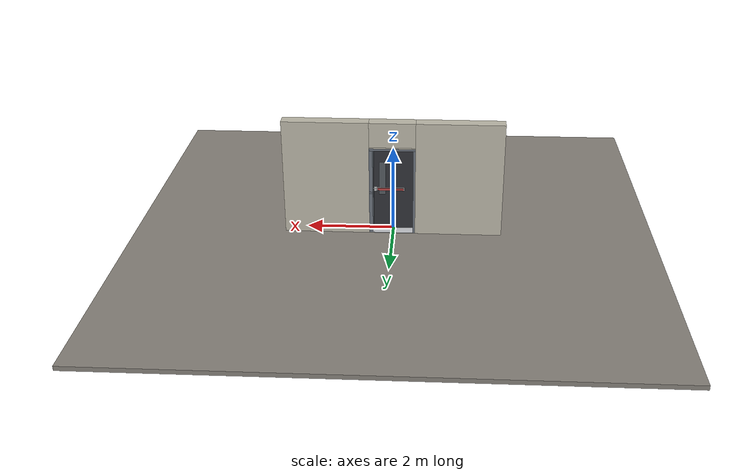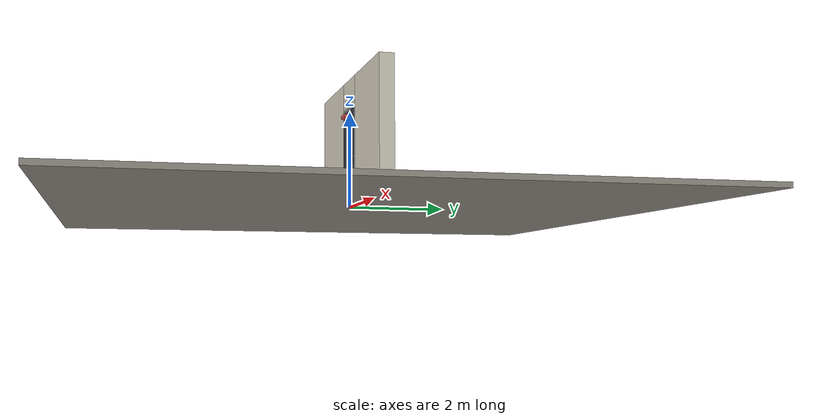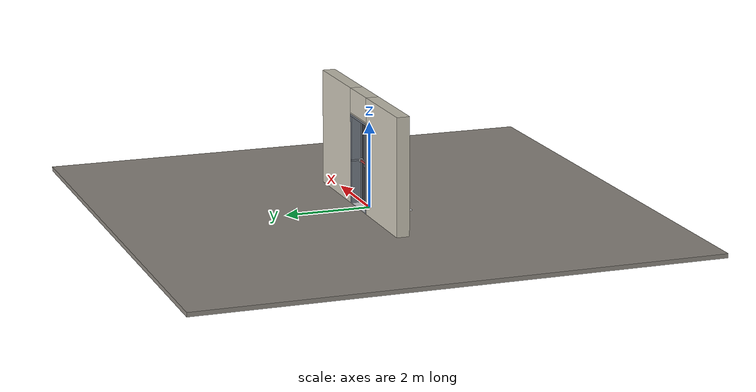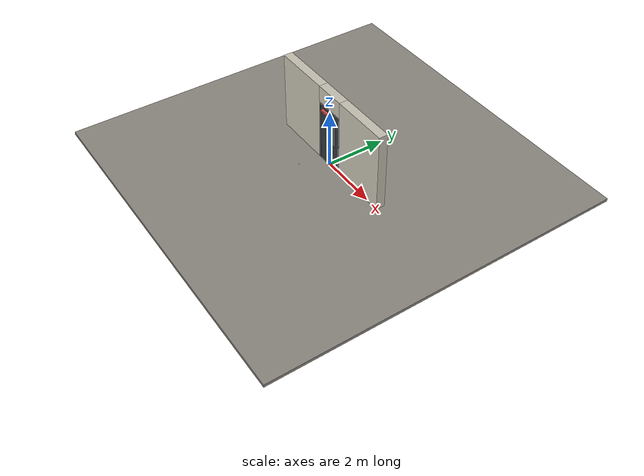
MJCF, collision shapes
<?xml version="1.0" ?>
<mujoco model="db0220_swing_single_simple">
  <compiler angle="radian" meshdir="../../hardware" texturedir="../../textures" autolimits="true" inertiafromgeom="false"/>
  <option timestep="0.002" integrator="implicitfast" cone="elliptic" impratio="10" noslip_iterations="3">
    <flag multiccd="enable"/>
  </option>
  <size memory="16M"/>
  <default>
    <geom condim="4" solref="0.005 1" solimp="0.95 0.99 0.001"/>
    <joint solreflimit="0.005 1" solimplimit="0.95 0.99 0.001"/>
    <tendon solreflimit="0.005 1"/>
    <equality solref="0.002 1"/>
  </default>
  <visual>
    <headlight ambient="0.4 0.4 0.4" diffuse="0.7 0.7 0.7" specular="0.2 0.2 0.2"/>
    <quality shadowsize="4096"/>
    <map znear="0.01" zfar="60"/>
  </visual>
  <asset>
    <mesh name="closer_body_fdc4667657" file="closer_body_fdc4667657.obj"/>
    <mesh name="hinge_ed08f20e7f" file="hinge_ed08f20e7f.obj"/>
    <mesh name="hinge_jamb_1278ce3e25" file="hinge_jamb_1278ce3e25.obj"/>
    <mesh name="touchbar_pad_2729a067b4" file="touchbar_pad_2729a067b4.obj"/>
    <material name="mat_floor" rgba="0.55 0.53 0.5 1" specular="0.2" shininess="0.15" reflectance="0"/>
    <material name="mat_wall" rgba="0.78 0.76 0.7 1" specular="0.2" shininess="0.1" reflectance="0"/>
    <material name="mat_leaf" rgba="0.2 0.21 0.23 1" specular="0.23" shininess="0.54" reflectance="0.02"/>
    <material name="mat_glass" rgba="0.85 0.92 0.95 0.25" specular="0.2" shininess="0.95" reflectance="0.1"/>
    <material name="mat_hinge" rgba="0.65 0.66 0.68 1" specular="0.74" shininess="0.5" reflectance="0.36"/>
    <material name="mat_op_stainless" rgba="0.75 0.76 0.77 1" specular="0.8" shininess="0.65" reflectance="0.4"/>
    <material name="mat_bolt" rgba="0.75 0.76 0.77 1" specular="0.8" shininess="0.65" reflectance="0.4"/>
    <material name="mat_frame" rgba="0.45 0.48 0.52 1" specular="0.32" shininess="0.6" reflectance="0.08"/>
    <material name="mat_seal" rgba="0.1 0.1 0.1 1" specular="0.2" shininess="0.1" reflectance="0"/>
    <material name="mat_threshold" rgba="0.8 0.81 0.83 1" specular="0.8" shininess="0.6" reflectance="0.4"/>
    <material name="mat_closer" rgba="0.22 0.17 0.13 1" specular="0.8" shininess="0.6" reflectance="0.4"/>
    <material name="mat_exit_sign" rgba="0.85 0.1 0.1 1" specular="0.2" shininess="0.6" reflectance="0"/>
    <material name="mat_sign_bracket" rgba="0.8 0.81 0.83 1" specular="0.8" shininess="0.6" reflectance="0.4"/>
    <material name="mat_stop" rgba="0.9 0.9 0.92 1" specular="0.8" shininess="0.9" reflectance="0.4"/>
    <texture name="skybox" type="skybox" builtin="gradient" rgb1="0.6 0.7 0.85" rgb2="0.9 0.92 0.95" width="256" height="256"/>
  </asset>
  <worldbody>
    <light name="sun" pos="1.5 -2.5 4" dir="-0.3 0.5 -0.8" directional="true" diffuse="0.8 0.8 0.8" specular="0.3 0.3 0.3" castshadow="true"/>
    <light name="fill" pos="-1.5 2.5 3" dir="0.3 -0.5 -0.7" directional="true" diffuse="0.35 0.35 0.4" castshadow="false"/>
    <camera name="robot_view" pos="0 -2.421187 1.734312" xyaxes="1 0 0 0 0.26963 0.962964" fovy="52"/>
    <camera name="far_view" pos="0 2.663187 1.734312" xyaxes="-1 0 0 0 -0.26963 0.962964" fovy="52"/>
    <camera name="iso" pos="1.932062 -2.014438 2.141063" xyaxes="0.741536 0.670913 0 -0.242917 0.268487 0.932151" fovy="46"/>
    <camera name="detail_handle" pos="0.5335 -0.679 1.296" xyaxes="0.97561 0.219512 0 -0.070934 0.315262 0.94635" fovy="38"/>
    <geom name="floor" type="box" size="6 6 0.05" pos="0 0 -0.05" material="mat_floor" group="0" contype="1" conaffinity="1" friction="0.8 0.005 0.0001" density="2400"/>
    <geom name="wall_left" type="box" size="0.99475 0.15 1.35" pos="-1.50525 0.121 1.35" material="mat_wall" group="0" contype="1" conaffinity="1" friction="0.6 0.005 0.0001" density="800"/>
    <geom name="wall_right" type="box" size="0.97975 0.15 1.35" pos="1.52025 0.121 1.35" material="mat_wall" group="0" contype="1" conaffinity="1" friction="0.6 0.005 0.0001" density="800"/>
    <geom name="wall_header" type="box" size="0.5255 0.15 0.2875" pos="0.015 0.121 2.4125" material="mat_wall" group="0" contype="1" conaffinity="1" friction="0.6 0.005 0.0001" density="800"/>
    <geom name="hinge_0_jamb" type="mesh" mesh="hinge_jamb_1278ce3e25" pos="-0.4575 -0.029 0.267" material="mat_hinge" group="1" contype="0" conaffinity="0" density="7850"/>
    <geom name="hinge_1_jamb" type="mesh" mesh="hinge_jamb_1278ce3e25" pos="-0.4575 -0.029 0.798333" material="mat_hinge" group="1" contype="0" conaffinity="0" density="7850"/>
    <geom name="hinge_2_jamb" type="mesh" mesh="hinge_jamb_1278ce3e25" pos="-0.4575 -0.029 1.329667" material="mat_hinge" group="1" contype="0" conaffinity="0" density="7850"/>
    <geom name="hinge_3_jamb" type="mesh" mesh="hinge_jamb_1278ce3e25" pos="-0.4575 -0.029 1.861" material="mat_hinge" group="1" contype="0" conaffinity="0" density="7850"/>
    <geom name="jamb_hinge" type="box" size="0.025 0.15 1.0225" pos="-0.4855 0.121 1.0225" material="mat_frame" group="0" contype="1" conaffinity="1" friction="0.6 0.005 0.0001" density="300"/>
    <geom name="strike_1016_wall_n" type="box" size="0.04 0.108 0.02" pos="0.5005 0.163 1.016" material="mat_frame" group="0" contype="1" conaffinity="1" friction="0.6 0.005 0.0001" density="300"/>
    <geom name="strike_1016_wall_p" type="box" size="0.04 0.008 0.02" pos="0.5005 0.025 1.016" material="mat_frame" group="0" contype="1" conaffinity="1" friction="0.6 0.005 0.0001" density="300"/>
    <geom name="strike_1016_ramp" type="box" size="0.04 0.034482 0.02" pos="0.508781 -0.0044 1.016" quat="0.989198 0 0 0.146587" material="mat_frame" group="0" contype="1" conaffinity="1" friction="0.12 0.005 0.0001" density="300"/>
    <geom name="strike_1016_back" type="box" size="0.0285 0.011 0.02" pos="0.512 0.044 1.016" material="mat_frame" group="0" contype="1" conaffinity="1" friction="0.6 0.005 0.0001" density="300"/>
    <geom name="jamb_strike_0" type="box" size="0.04 0.15 0.498" pos="0.5005 0.121 0.498" material="mat_frame" group="0" contype="1" conaffinity="1" friction="0.6 0.005 0.0001" density="300"/>
    <geom name="jamb_strike_1" type="box" size="0.04 0.15 0.5045" pos="0.5005 0.121 1.5405" material="mat_frame" group="0" contype="1" conaffinity="1" friction="0.6 0.005 0.0001" density="300"/>
    <geom name="jamb_head" type="box" size="0.5255 0.15 0.025" pos="0.015 0.121 2.07" material="mat_frame" group="0" contype="1" conaffinity="1" friction="0.6 0.005 0.0001" density="300"/>
    <geom name="head_stud" type="box" size="0.5255 0.15 0.015" pos="0.015 0.121 2.11" material="mat_wall" group="0" contype="1" conaffinity="1" friction="0.6 0.005 0.0001" density="500"/>
    <geom name="stop_hinge" type="box" size="0.0055 0.016 1.0225" pos="-0.455 0.0385 1.0225" material="mat_frame" group="0" contype="1" conaffinity="1" friction="0.6 0.005 0.0001" density="300"/>
    <geom name="stop_strike" type="box" size="0.0055 0.016 0.48425" pos="0.455 0.0385 0.48425" material="mat_frame" group="0" contype="1" conaffinity="1" friction="0.6 0.005 0.0001" density="300"/>
    <geom name="stop_strike_1" type="box" size="0.0055 0.016 0.49075" pos="0.455 0.0385 1.55425" material="mat_frame" group="0" contype="1" conaffinity="1" friction="0.6 0.005 0.0001" density="300"/>
    <geom name="stop_head" type="box" size="0.4605 0.016 0.0055" pos="0 0.0385 2.0395" material="mat_frame" group="0" contype="1" conaffinity="1" friction="0.6 0.005 0.0001" density="300"/>
    <geom name="seal_hinge" type="box" size="0.004 0.002 1.0225" pos="-0.4575 0.024 1.0225" material="mat_seal" group="1" contype="0" conaffinity="0" density="1100"/>
    <geom name="seal_strike" type="box" size="0.004 0.002 0.48425" pos="0.4575 0.024 0.48425" material="mat_seal" group="1" contype="0" conaffinity="0" density="1100"/>
    <geom name="seal_strike_1" type="box" size="0.004 0.002 0.49075" pos="0.4575 0.024 1.55425" material="mat_seal" group="1" contype="0" conaffinity="0" density="1100"/>
    <geom name="seal_head" type="box" size="0.4405 0.002 0.008" pos="0 0.024 2.033" material="mat_seal" group="1" contype="0" conaffinity="0" density="1100"/>
    <geom name="threshold" type="box" size="0.5105 0.15 0.0065" pos="0 0.121 0.0065" material="mat_threshold" group="0" contype="1" conaffinity="1" friction="0.5 0.005 0.0001" density="2700"/>
    <geom name="floor_stop_dome" type="sphere" size="0.025" pos="-0.545135 -0.801201 0" material="mat_stop" group="0" contype="1" conaffinity="1" friction="0.6 0.005 0.0001" density="7000"/>
    <site name="approach_point" pos="0 -1.5 0" quat="1 0 0 0" size="0.05" rgba="0.2 0.9 0.2 0.5" group="4"/>
    <site name="goal_point" pos="0 1.5 0" quat="1 0 0 0" size="0.05" rgba="0.2 0.9 0.2 0.5" group="4"/>
    <site name="door_plane_center" pos="0 0 1.0225" quat="1 0 0 0" size="0.02" rgba="0.2 0.9 0.2 0.5" group="4"/>
    <body name="leaf" pos="-0.4605 0 0">
      <inertial pos="0.420292 -0.015995 1.250694" mass="49.526858" quat="-0.494607 0.463958 0.5198 0.519533" diaginertia="3.077997341 19.894262813 22.87609975"/>
      <joint name="leaf_hinge" type="hinge" axis="0 0 -1" pos="0.003 -0.029 0" limited="true" range="0 1.658063" solreflimit="0.02 1" damping="12.25611" frictionloss="1.284499" stiffness="12.94248" springref="-1.515938" armature="0.02"/>
      <geom name="leaf_slab" type="box" size="0.457 0.022 1.012" pos="0.46 0 1.029" material="mat_leaf" group="0" contype="1" conaffinity="1" friction="0.4 0.005 0.0001" density="1"/>
      <geom name="leaf_glass_0" type="box" size="0.075 0.0228 0.4048" pos="0.71146 0 1.27188" material="mat_glass" group="1" contype="0" conaffinity="0" density="1"/>
      <geom name="hinge_0" type="mesh" mesh="hinge_ed08f20e7f" pos="0.003 -0.029 0.267" material="mat_hinge" group="1" contype="0" conaffinity="0" density="7850"/>
      <geom name="hinge_1" type="mesh" mesh="hinge_ed08f20e7f" pos="0.003 -0.029 0.798333" material="mat_hinge" group="1" contype="0" conaffinity="0" density="7850"/>
      <geom name="hinge_2" type="mesh" mesh="hinge_ed08f20e7f" pos="0.003 -0.029 1.329667" material="mat_hinge" group="1" contype="0" conaffinity="0" density="7850"/>
      <geom name="hinge_3" type="mesh" mesh="hinge_ed08f20e7f" pos="0.003 -0.029 1.861" material="mat_hinge" group="1" contype="0" conaffinity="0" density="7850"/>
      <geom name="leaf_exit_device_rail" type="box" size="0.31705 0.006 0.025" pos="0.51995 0.028 1.016" material="mat_op_stainless" group="0" contype="1" conaffinity="1" friction="0.6 0.005 0.0001" density="3000"/>
      <geom name="leaf_exit_device_rail_end_n" type="box" size="0.01 0.0325 0.025" pos="0.2129 0.0545 1.016" material="mat_op_stainless" group="0" contype="1" conaffinity="1" friction="0.6 0.005 0.0001" density="3000"/>
      <geom name="leaf_exit_device_rail_end_p" type="box" size="0.01 0.0325 0.025" pos="0.827 0.0545 1.016" material="mat_op_stainless" group="0" contype="1" conaffinity="1" friction="0.6 0.005 0.0001" density="3000"/>
      <geom name="leaf_exit_device_case" type="box" size="0.034 0.034125 0.0375" pos="0.871 0.056125 1.016" material="mat_op_stainless" group="0" contype="1" conaffinity="1" friction="0.6 0.005 0.0001" density="3000"/>
      <geom name="closer_body" type="mesh" mesh="closer_body_fdc4667657" pos="0.3 -0.022 1.944" quat="0.707107 0.707107 0 0" material="mat_closer" group="1" contype="0" conaffinity="0" density="2000"/>
      <geom name="closer_body_col" type="box" size="0.145 0.05 0.035" pos="0.3 -0.072 1.944" material="mat_closer" group="3" contype="1" conaffinity="1" rgba="0.8 0.3 0.3 0.25" friction="0.6 0.005 0.0001" density="2000"/>
      <site name="leaf_edge_mid" pos="0.917 0 1.012" quat="1 0 0 0" size="0.02" rgba="0.2 0.9 0.2 0.5" group="4"/>
      <body name="leaf_exit_device" pos="0.51995 0.022 1.016">
        <inertial pos="0 0.05 0" mass="4.76361" quat="0 0 0.707107 0.707107" diaginertia="0.00116113 0.137653089 0.138099678"/>
        <joint name="leaf_exit_device_slide" type="slide" axis="0 -1 0" limited="true" range="0 0.016" damping="153.575154" frictionloss="0.5" stiffness="1200" springref="-0.015" armature="0.15"/>
        <geom name="leaf_exit_device_pad" type="mesh" mesh="touchbar_pad_2729a067b4" pos="0 0 0" quat="-0.707107 0.707107 0 0" material="mat_op_stainless" group="1" contype="0" conaffinity="0" density="3000"/>
        <geom name="leaf_exit_device_pad_col" type="box" size="0.29405 0.015 0.0225" pos="0 0.05 0" material="mat_op_stainless" group="3" contype="1" conaffinity="1" rgba="0.8 0.3 0.3 0.25" friction="0.8 0.01 0.0001" density="3000"/>
        <site name="leaf_exit_device_push" pos="0 0.065 0" quat="1 0 0 0" size="0.015" rgba="0.2 0.9 0.2 0.5" group="4"/>
      </body>
      <body name="leaf_latch_bolt" pos="0.917 0.044 1.016">
        <inertial pos="-0.0055 0 0" mass="0.102826" quat="0.92388 -0.382683 0 0" diaginertia="0.000004365 0.000018287 0.000018287"/>
        <joint name="leaf_latch_bolt_slide" type="slide" axis="-1 0 0" limited="true" range="0 0.019" damping="2" frictionloss="0.3" stiffness="800" springref="-0.01" armature="0.1"/>
        <geom name="leaf_latch_bolt_capsule" type="capsule" size="0.0095 0.015" pos="-0.0055 0 0" quat="0.707107 0 0.707107 0" material="mat_bolt" group="0" contype="1" conaffinity="1" friction="0.2 0.005 0.0001" density="8500"/>
      </body>
    </body>
  </worldbody>
  <tendon>
    <fixed name="leaf_latch_bolt_coupling" limited="true" range="0 10">
      <joint joint="leaf_latch_bolt_slide" coef="1"/>
      <joint joint="leaf_exit_device_slide" coef="-1.357143"/>
    </fixed>
  </tendon>
  <sensor>
    <jointpos name="leaf_hinge_pos" joint="leaf_hinge"/>
    <jointvel name="leaf_hinge_vel" joint="leaf_hinge"/>
    <jointpos name="leaf_exit_device_slide_pos" joint="leaf_exit_device_slide"/>
    <jointvel name="leaf_exit_device_slide_vel" joint="leaf_exit_device_slide"/>
    <jointpos name="leaf_latch_bolt_slide_pos" joint="leaf_latch_bolt_slide"/>
    <jointvel name="leaf_latch_bolt_slide_vel" joint="leaf_latch_bolt_slide"/>
  </sensor>
</mujoco>
